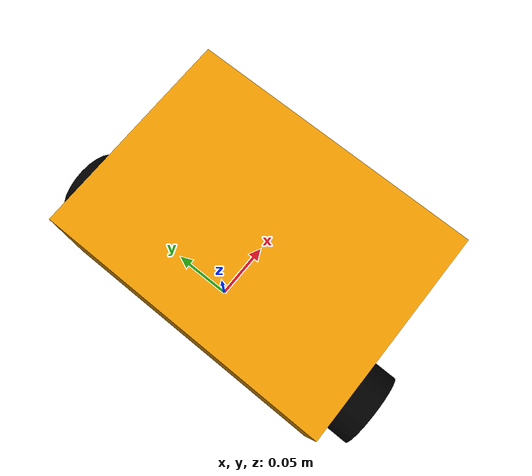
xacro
<?xml version="1.0"?>
<robot xmlns:xacro="http://www.ros.org/wiki/xacro">

    <xacro:include filename="inertial_macros.xacro"/>

    <material name="white">
        <color rgba="1 1 1 1" />
    </material>

    <material name="black">
        <color rgba="0 0 0 1" />
    </material>

    <material name="gray">
        <color rgba="0.5 0.5 0.5 1" />
    </material>

    <material name="red">
        <color rgba="1 0 0 1" />
    </material>

    <material name="yellow">
        <color rgba="1 1 0 1" />
    </material>

    <material name="orange">
        <color rgba="1 0.65 0 1" />
    </material>

    <!-- BASE LINK -->
    <!-- let world origin at between centre of two wheels -->
    <link name="base_link">
        <xacro:inertial_box mass="0.0001" x="0.0001" y="0.0001" z="0.0001">
            <origin xyz="0 0 0" rpy="0 0 0" />
        </xacro:inertial_box>
    </link>

    <!-- BASE_FOOTPRINT -->
    <joint name="base_footprint_joint" type="fixed">
        <parent link="base_link"/>
        <child link="base_footprint"/>
        <origin xyz="0 0 0" rpy="0 0 0"/>
    </joint>

    <link name="base_footprint">
    </link>

    <!-- BODY -->
    <joint name="body_joint" type="fixed">
        <parent link="base_link" />
        <child link="body" />
        <!-- joint at body's bottom rear-->
        <origin xyz="-0.05 0 -0.025" />
    </joint>
    <link name="body">
        <visual>
            <origin xyz="0.095 0 0.05" />
            <geometry>
                <box size="0.19 0.26 0.10" />
            </geometry>
            <material name="orange"/>
        </visual>
        <collision>
            <origin xyz="0.095 0 0.05" />
            <geometry>
                <box size="0.19 0.26 0.10" />
            </geometry>
        </collision>
        <xacro:inertial_box mass="1.2" x="0.19" y="0.26" z="0.1">
            <origin xyz="0.095 0 0.05" rpy="0 0 0" />
        </xacro:inertial_box>
    </link>

    <!-- LEFT WHEEL -->
    <joint name="left_wheel_joint" type="continuous">
        <parent link="base_link"/>
        <child link="left_wheel"/>
        <!-- ROTATE Z-AXIS TO FACE OUTWARDS
             BY DEFAULT CYLINDER LENGTH PARALLEL TO Z-AXIS -->
        <origin xyz="0 0.1435 0" rpy="-${pi/2} 0 0"/>
        <!-- WHEEL ROTATE AROUND Z-AXIS
             ANTICLOCKWISE TO MOVE FORWARD -->
        <axis xyz="0 0 1"/>
        <limit effort="50000" velocity="10"/>
    </joint>
    <link name="left_wheel">
        <visual>
            <geometry>
                <cylinder radius="0.0335" length="0.027"/>
            </geometry>
            <material name="black"/>
        </visual>
        <collision>
            <geometry>
                <sphere radius="0.0335" />
            </geometry>
        </collision>
        <xacro:inertial_cylinder mass="0.05" radius="0.0335" length="0.027">
            <origin xyz="0 0 0" rpy="0 0 0" />
        </xacro:inertial_cylinder>
    </link>

    <!-- RIGHT WHEEL -->
    <joint name="right_wheel_joint" type="continuous">
        <parent link="base_link"/>
        <child link="right_wheel"/>
        <!-- ROTATE Z-AXIS TO FACE OUTWARDS
             BY DEFAULT CYLINDER LENGTH PARALLEL TO Z-AXIS -->
        <origin xyz="0 -0.1435 0" rpy="${pi/2} 0 0"/>
        <!-- WHEEL ROTATE AROUND Z-AXIS
             ANTICLOCKWISE TO MOVE FORWARD -->
        <axis xyz="0 0 -1"/>
        <limit effort="50000" velocity="10"/>
    </joint>
    <link name="right_wheel">
        <visual>
            <geometry>
                <cylinder radius="0.0335" length="0.027"/>
            </geometry>
            <material name="black"/>
        </visual>
        <collision>
            <geometry>
                <!-- change geometry to sphere: reduce friction, make gazebo & rviz odom rotation more accurate -->
                <sphere radius="0.0335" />
            </geometry>
        </collision>
        <xacro:inertial_cylinder mass="0.05" radius="0.0335" length="0.027">
            <origin xyz="0 0 0" rpy="0 0 0" />
        </xacro:inertial_cylinder>
    </link>

    <!-- CASTER WHEEL -->
    <joint name="caster_wheel_joint" type="fixed">
        <parent link="body"/>
        <child link="caster_wheel"/>
        <origin xyz="0.15 0 0"/>
    </joint>
    <link name="caster_wheel">
        <visual>
            <geometry>
                <sphere radius="0.0085"/>
            </geometry>
            <material name="black"/>
        </visual>
        <collision>
            <geometry>
                <sphere radius="0.0085"/>
            </geometry>
        </collision>
        <xacro:inertial_sphere mass="0.025" radius="0.0085">
            <origin xyz="0 0 0" rpy="0 0 0" />
        </xacro:inertial_sphere>
    </link>

</robot>
